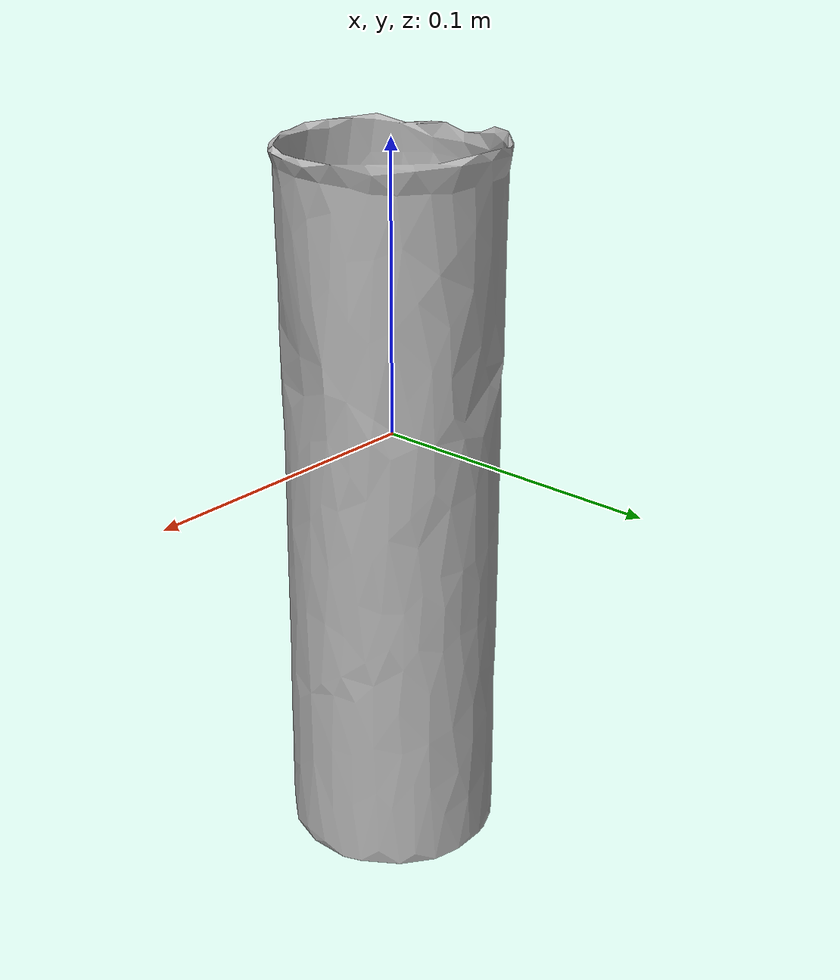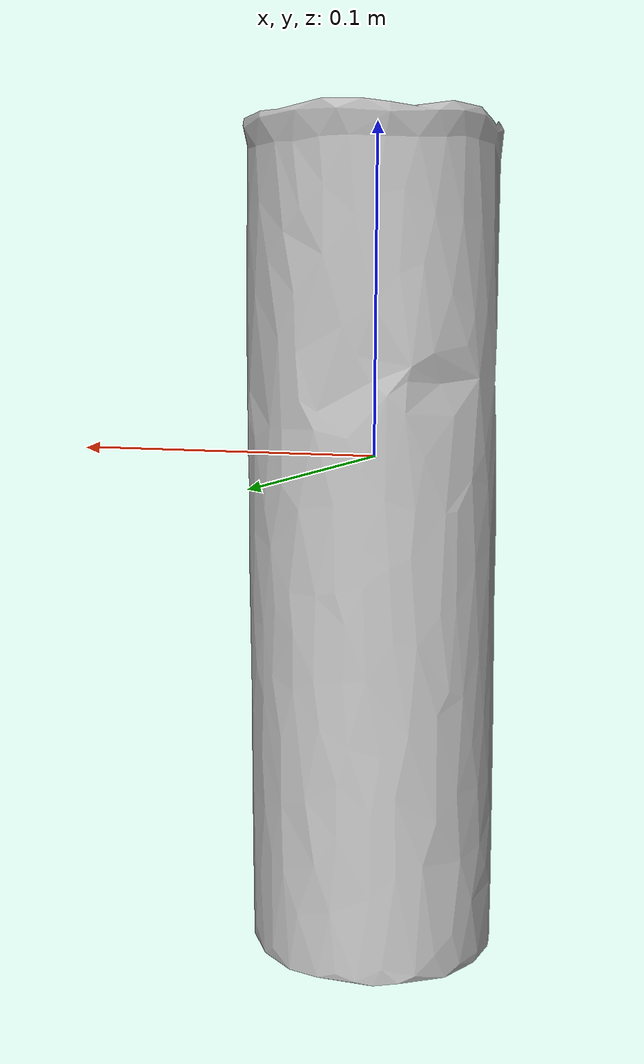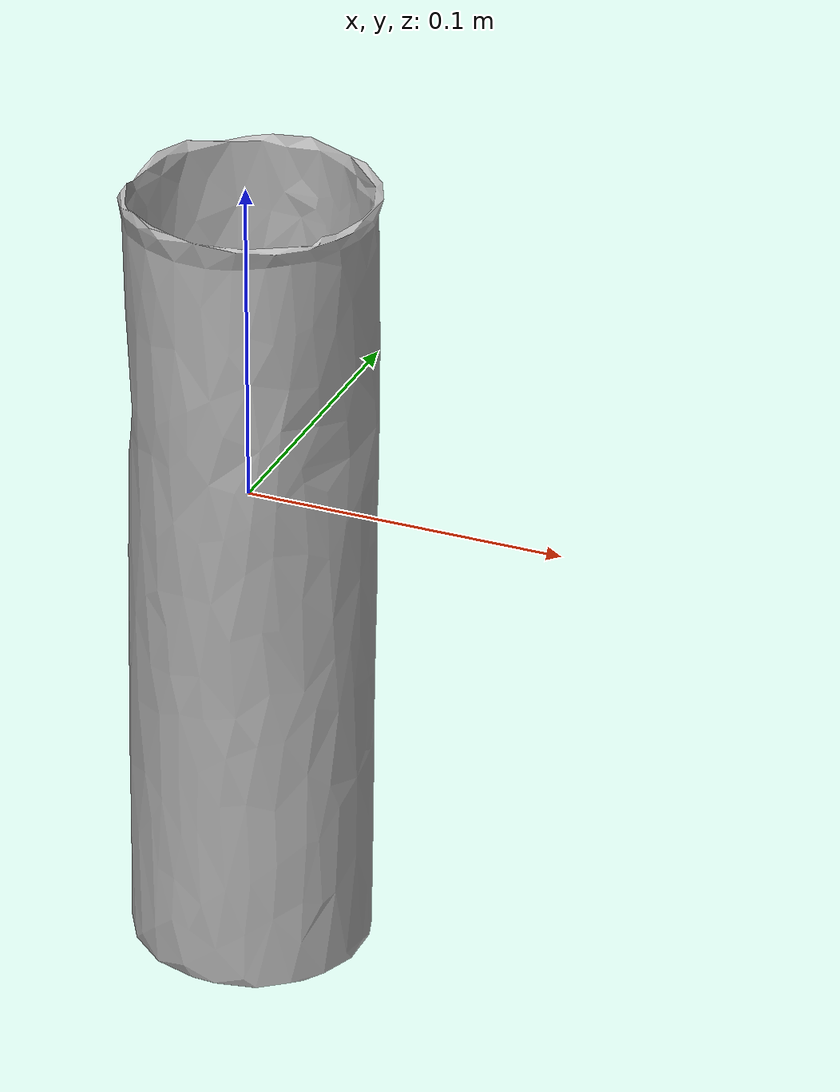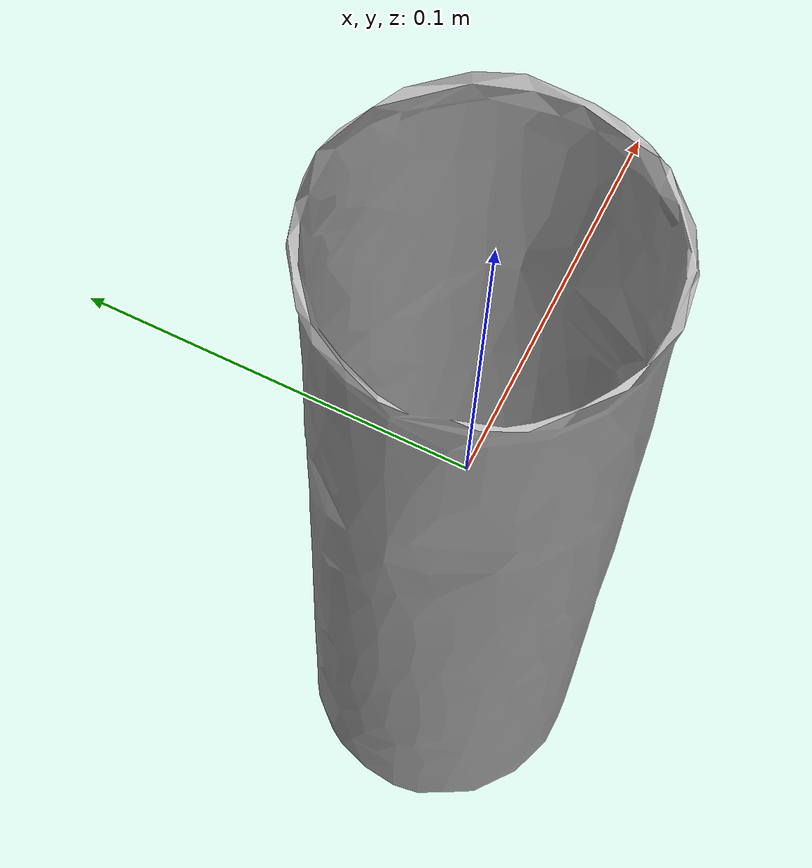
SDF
<?xml version="1.0" ?>
<sdf version="1.4">
  <model name="pringles_paprika">
    <link name="pringles_paprika_link">
      <inertial>
        <pose>0 0 0 0 0 0</pose>
        <mass>0.08</mass>
      </inertial>

      <visual name="pringles_paprika_visual">
        <pose>0 0 0 0 0 0</pose>
        <material>
          <script>
            <uri>model://pringles_paprika/materials/scripts</uri>
            <uri>model://pringles_paprika/materials/textures</uri>
            <name>pringles_paprika</name>
          </script>
        </material>
        <geometry>
          <mesh>
            <uri>model://pringles_paprika/meshes/pringles_paprika.dae</uri>
          </mesh>
        </geometry>
      </visual>

      <collision name="pringles_paprika_collision">
        <pose>0 0 0 0 0 0</pose>
        <geometry>
          <mesh>
            <uri>model://pringles_paprika/meshes/pringles_paprika.dae</uri>
          </mesh>
        </geometry>
        <surface>
          <friction>
            <ode>
              <mu>0.8</mu>
              <mu2>0.8</mu2>
              <fdir1>0.0 0.0 0.0</fdir1>
              <slip1>0.01</slip1>
              <slip2>0.01</slip2>
            </ode>
          </friction>
        </surface>
      </collision>

    </link>
  </model>
</sdf>
